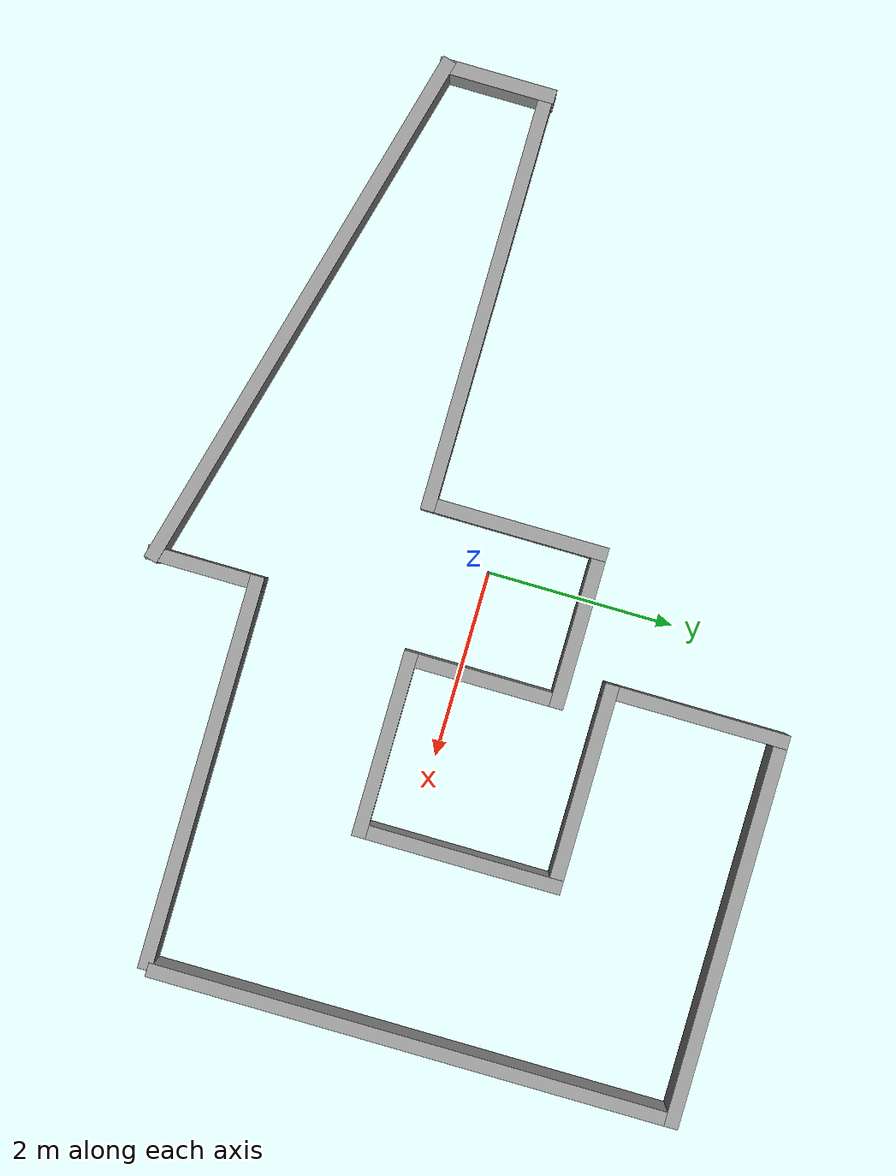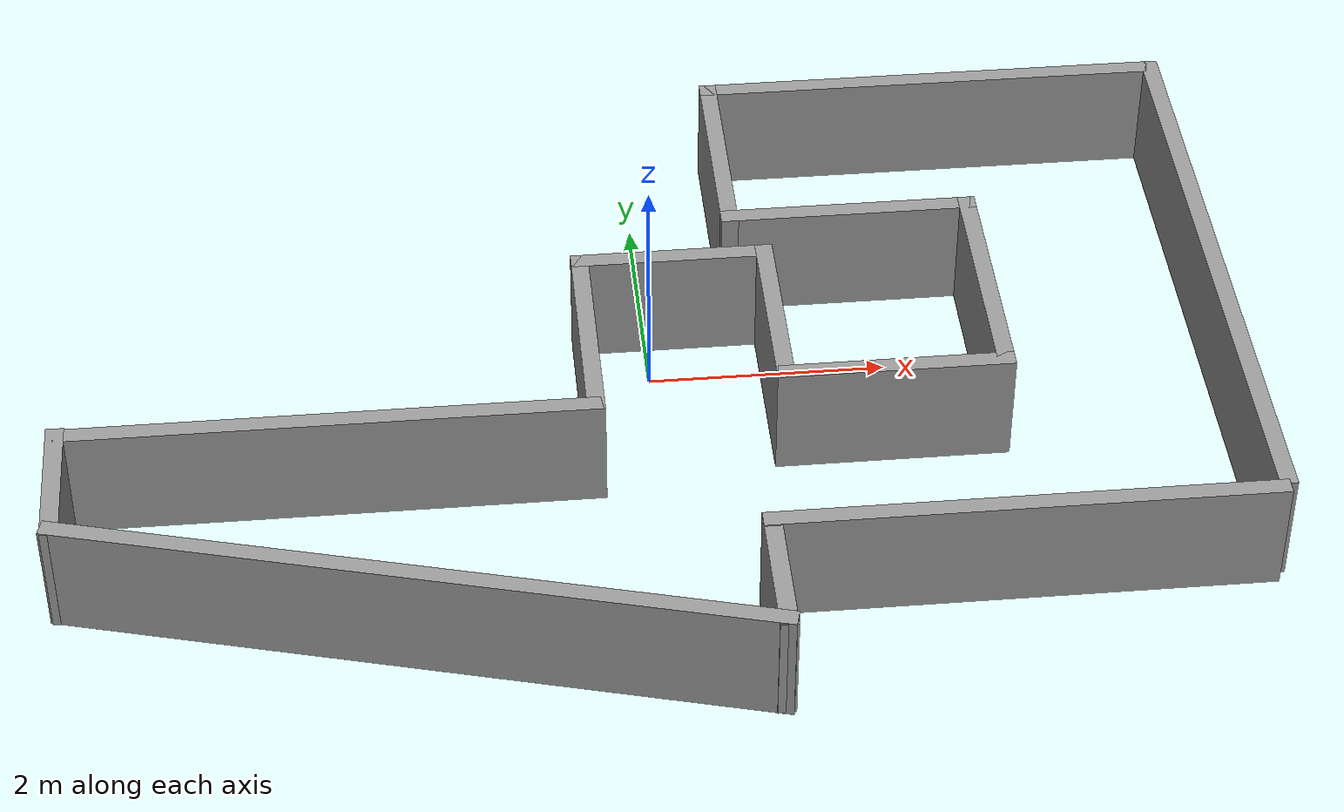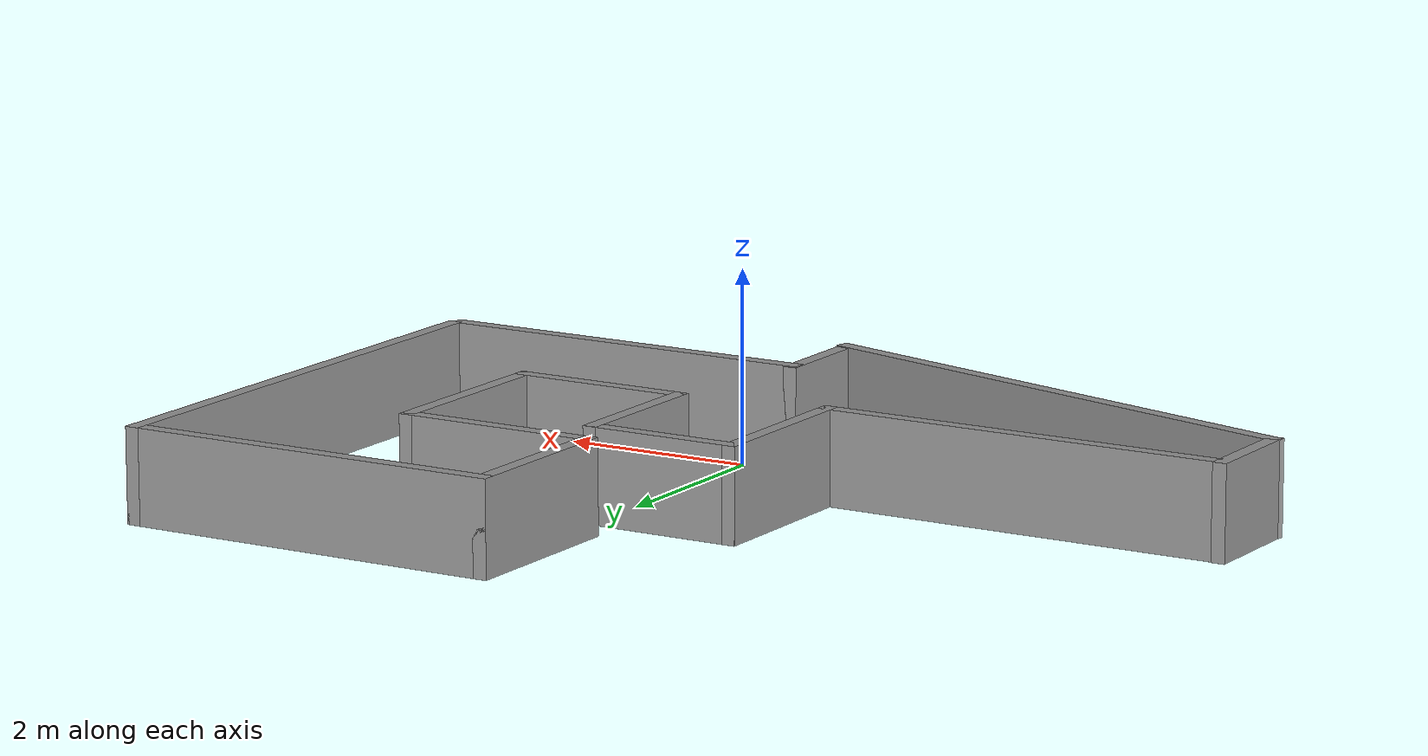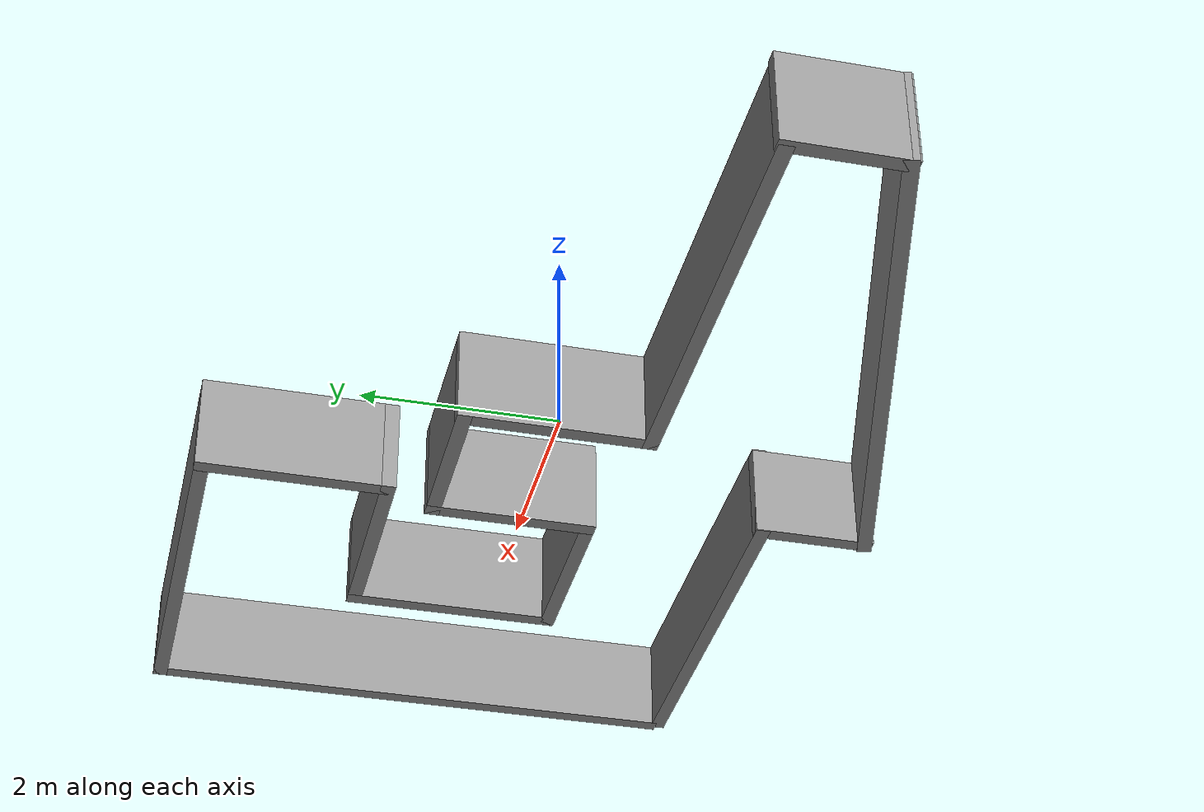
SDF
<?xml version='1.0'?>
<sdf version='1.7'>
  <model name='walls'>
    <link name='Wall_10'>
      <pose>2.01446 -0.541626 0 0 -0 0</pose>
      <self_collide>0</self_collide>
      <enable_wind>0</enable_wind>
      <kinematic>0</kinematic>
      <gravity>1</gravity>
      <inertial>
        <mass>1</mass>
        <pose>0 0 0 0 -0 0</pose>
        <inertia>
          <ixx>1</ixx>
          <ixy>0</ixy>
          <ixz>0</ixz>
          <iyy>1</iyy>
          <iyz>0</iyz>
          <izz>1</izz>
        </inertia>
      </inertial>
      <visual name='Wall_10_Visual'>
        <pose>0 0 0 0 -0 0</pose>
        <geometry>
          <box>
            <size>2 0.15 1</size>
          </box>
        </geometry>
        <material>
          <script>
            <uri>file://media/materials/scripts/gazebo.material</uri>
            <name>Gazebo/Grey</name>
          </script>
          <ambient>1 1 1 1</ambient>
          <shader type='pixel'>
            <normal_map>__default__</normal_map>
          </shader>
          <diffuse>0.7 0.7 0.7 1</diffuse>
          <specular>0.01 0.01 0.01 1</specular>
          <emissive>0 0 0 1</emissive>
        </material>
        <meta>
          <layer>0</layer>
        </meta>
        <transparency>0</transparency>
        <cast_shadows>1</cast_shadows>
      </visual>
      <collision name='Wall_10_Collision'>
        <laser_retro>0</laser_retro>
        <max_contacts>10</max_contacts>
        <pose>0 0 0 0 -0 0</pose>
        <geometry>
          <box>
            <size>2 0.15 1</size>
          </box>
        </geometry>
        <surface>
          <friction>
            <ode>
              <mu>1</mu>
              <mu2>1</mu2>
              <fdir1>0 0 0</fdir1>
              <slip1>0</slip1>
              <slip2>0</slip2>
            </ode>
            <torsional>
              <coefficient>1</coefficient>
              <patch_radius>0</patch_radius>
              <surface_radius>0</surface_radius>
              <use_patch_radius>1</use_patch_radius>
              <ode>
                <slip>0</slip>
              </ode>
            </torsional>
          </friction>
          <bounce>
            <restitution_coefficient>0</restitution_coefficient>
            <threshold>1e+06</threshold>
          </bounce>
          <contact>
            <collide_without_contact>0</collide_without_contact>
            <collide_without_contact_bitmask>1</collide_without_contact_bitmask>
            <collide_bitmask>1</collide_bitmask>
            <ode>
              <soft_cfm>0</soft_cfm>
              <soft_erp>0.2</soft_erp>
              <kp>1e+13</kp>
              <kd>1</kd>
              <max_vel>0.01</max_vel>
              <min_depth>0</min_depth>
            </ode>
            <bullet>
              <split_impulse>1</split_impulse>
              <split_impulse_penetration_threshold>-0.01</split_impulse_penetration_threshold>
              <soft_cfm>0</soft_cfm>
              <soft_erp>0.2</soft_erp>
              <kp>1e+13</kp>
              <kd>1</kd>
            </bullet>
          </contact>
        </surface>
      </collision>
    </link>
    <link name='Wall_14'>
      <pose>2.93946 0.508374 0 0 -0 1.5708</pose>
      <self_collide>0</self_collide>
      <enable_wind>0</enable_wind>
      <kinematic>0</kinematic>
      <gravity>1</gravity>
      <inertial>
        <mass>1</mass>
        <pose>0 0 0 0 -0 0</pose>
        <inertia>
          <ixx>1</ixx>
          <ixy>0</ixy>
          <ixz>0</ixz>
          <iyy>1</iyy>
          <iyz>0</iyz>
          <izz>1</izz>
        </inertia>
      </inertial>
      <visual name='Wall_14_Visual'>
        <pose>0 0 0 0 -0 0</pose>
        <geometry>
          <box>
            <size>2.25 0.15 1</size>
          </box>
        </geometry>
        <material>
          <script>
            <uri>file://media/materials/scripts/gazebo.material</uri>
            <name>Gazebo/Grey</name>
          </script>
          <ambient>1 1 1 1</ambient>
          <shader type='pixel'>
            <normal_map>__default__</normal_map>
          </shader>
          <diffuse>0.7 0.7 0.7 1</diffuse>
          <specular>0.01 0.01 0.01 1</specular>
          <emissive>0 0 0 1</emissive>
        </material>
        <meta>
          <layer>0</layer>
        </meta>
        <transparency>0</transparency>
        <cast_shadows>1</cast_shadows>
      </visual>
      <collision name='Wall_14_Collision'>
        <laser_retro>0</laser_retro>
        <max_contacts>10</max_contacts>
        <pose>0 0 0 0 -0 0</pose>
        <geometry>
          <box>
            <size>2.25 0.15 1</size>
          </box>
        </geometry>
        <surface>
          <friction>
            <ode>
              <mu>1</mu>
              <mu2>1</mu2>
              <fdir1>0 0 0</fdir1>
              <slip1>0</slip1>
              <slip2>0</slip2>
            </ode>
            <torsional>
              <coefficient>1</coefficient>
              <patch_radius>0</patch_radius>
              <surface_radius>0</surface_radius>
              <use_patch_radius>1</use_patch_radius>
              <ode>
                <slip>0</slip>
              </ode>
            </torsional>
          </friction>
          <bounce>
            <restitution_coefficient>0</restitution_coefficient>
            <threshold>1e+06</threshold>
          </bounce>
          <contact>
            <collide_without_contact>0</collide_without_contact>
            <collide_without_contact_bitmask>1</collide_without_contact_bitmask>
            <collide_bitmask>1</collide_bitmask>
            <ode>
              <soft_cfm>0</soft_cfm>
              <soft_erp>0.2</soft_erp>
              <kp>1e+13</kp>
              <kd>1</kd>
              <max_vel>0.01</max_vel>
              <min_depth>0</min_depth>
            </ode>
            <bullet>
              <split_impulse>1</split_impulse>
              <split_impulse_penetration_threshold>-0.01</split_impulse_penetration_threshold>
              <soft_cfm>0</soft_cfm>
              <soft_erp>0.2</soft_erp>
              <kp>1e+13</kp>
              <kd>1</kd>
            </bullet>
          </contact>
        </surface>
      </collision>
    </link>
    <link name='Wall_15'>
      <pose>1.88946 1.55837 0 0 -0 3.14159</pose>
      <self_collide>0</self_collide>
      <enable_wind>0</enable_wind>
      <kinematic>0</kinematic>
      <gravity>1</gravity>
      <inertial>
        <mass>1</mass>
        <pose>0 0 0 0 -0 0</pose>
        <inertia>
          <ixx>1</ixx>
          <ixy>0</ixy>
          <ixz>0</ixz>
          <iyy>1</iyy>
          <iyz>0</iyz>
          <izz>1</izz>
        </inertia>
      </inertial>
      <visual name='Wall_15_Visual'>
        <pose>0 0 0 0 -0 0</pose>
        <geometry>
          <box>
            <size>2.25 0.15 1</size>
          </box>
        </geometry>
        <material>
          <script>
            <uri>file://media/materials/scripts/gazebo.material</uri>
            <name>Gazebo/Grey</name>
          </script>
          <ambient>1 1 1 1</ambient>
          <shader type='pixel'>
            <normal_map>__default__</normal_map>
          </shader>
          <diffuse>0.7 0.7 0.7 1</diffuse>
          <specular>0.01 0.01 0.01 1</specular>
          <emissive>0 0 0 1</emissive>
        </material>
        <meta>
          <layer>0</layer>
        </meta>
        <transparency>0</transparency>
        <cast_shadows>1</cast_shadows>
      </visual>
      <collision name='Wall_15_Collision'>
        <laser_retro>0</laser_retro>
        <max_contacts>10</max_contacts>
        <pose>0 0 0 0 -0 0</pose>
        <geometry>
          <box>
            <size>2.25 0.15 1</size>
          </box>
        </geometry>
        <surface>
          <friction>
            <ode>
              <mu>1</mu>
              <mu2>1</mu2>
              <fdir1>0 0 0</fdir1>
              <slip1>0</slip1>
              <slip2>0</slip2>
            </ode>
            <torsional>
              <coefficient>1</coefficient>
              <patch_radius>0</patch_radius>
              <surface_radius>0</surface_radius>
              <use_patch_radius>1</use_patch_radius>
              <ode>
                <slip>0</slip>
              </ode>
            </torsional>
          </friction>
          <bounce>
            <restitution_coefficient>0</restitution_coefficient>
            <threshold>1e+06</threshold>
          </bounce>
          <contact>
            <collide_without_contact>0</collide_without_contact>
            <collide_without_contact_bitmask>1</collide_without_contact_bitmask>
            <collide_bitmask>1</collide_bitmask>
            <ode>
              <soft_cfm>0</soft_cfm>
              <soft_erp>0.2</soft_erp>
              <kp>1e+13</kp>
              <kd>1</kd>
              <max_vel>0.01</max_vel>
              <min_depth>0</min_depth>
            </ode>
            <bullet>
              <split_impulse>1</split_impulse>
              <split_impulse_penetration_threshold>-0.01</split_impulse_penetration_threshold>
              <soft_cfm>0</soft_cfm>
              <soft_erp>0.2</soft_erp>
              <kp>1e+13</kp>
              <kd>1</kd>
            </bullet>
          </contact>
        </surface>
      </collision>
    </link>
    <link name='Wall_16'>
      <pose>0.839457 2.48337 0 0 -0 1.5708</pose>
      <self_collide>0</self_collide>
      <enable_wind>0</enable_wind>
      <kinematic>0</kinematic>
      <gravity>1</gravity>
      <inertial>
        <mass>1</mass>
        <pose>0 0 0 0 -0 0</pose>
        <inertia>
          <ixx>1</ixx>
          <ixy>0</ixy>
          <ixz>0</ixz>
          <iyy>1</iyy>
          <iyz>0</iyz>
          <izz>1</izz>
        </inertia>
      </inertial>
      <visual name='Wall_16_Visual'>
        <pose>0 0 0 0 -0 0</pose>
        <geometry>
          <box>
            <size>2 0.15 1</size>
          </box>
        </geometry>
        <material>
          <script>
            <uri>file://media/materials/scripts/gazebo.material</uri>
            <name>Gazebo/Grey</name>
          </script>
          <ambient>1 1 1 1</ambient>
          <shader type='pixel'>
            <normal_map>__default__</normal_map>
          </shader>
          <diffuse>0.7 0.7 0.7 1</diffuse>
          <specular>0.01 0.01 0.01 1</specular>
          <emissive>0 0 0 1</emissive>
        </material>
        <meta>
          <layer>0</layer>
        </meta>
        <transparency>0</transparency>
        <cast_shadows>1</cast_shadows>
      </visual>
      <collision name='Wall_16_Collision'>
        <laser_retro>0</laser_retro>
        <max_contacts>10</max_contacts>
        <pose>0 0 0 0 -0 0</pose>
        <geometry>
          <box>
            <size>2 0.15 1</size>
          </box>
        </geometry>
        <surface>
          <friction>
            <ode>
              <mu>1</mu>
              <mu2>1</mu2>
              <fdir1>0 0 0</fdir1>
              <slip1>0</slip1>
              <slip2>0</slip2>
            </ode>
            <torsional>
              <coefficient>1</coefficient>
              <patch_radius>0</patch_radius>
              <surface_radius>0</surface_radius>
              <use_patch_radius>1</use_patch_radius>
              <ode>
                <slip>0</slip>
              </ode>
            </torsional>
          </friction>
          <bounce>
            <restitution_coefficient>0</restitution_coefficient>
            <threshold>1e+06</threshold>
          </bounce>
          <contact>
            <collide_without_contact>0</collide_without_contact>
            <collide_without_contact_bitmask>1</collide_without_contact_bitmask>
            <collide_bitmask>1</collide_bitmask>
            <ode>
              <soft_cfm>0</soft_cfm>
              <soft_erp>0.2</soft_erp>
              <kp>1e+13</kp>
              <kd>1</kd>
              <max_vel>0.01</max_vel>
              <min_depth>0</min_depth>
            </ode>
            <bullet>
              <split_impulse>1</split_impulse>
              <split_impulse_penetration_threshold>-0.01</split_impulse_penetration_threshold>
              <soft_cfm>0</soft_cfm>
              <soft_erp>0.2</soft_erp>
              <kp>1e+13</kp>
              <kd>1</kd>
            </bullet>
          </contact>
        </surface>
      </collision>
    </link>
    <link name='Wall_17'>
      <pose>2.88946 3.40837 0 0 -0 0</pose>
      <self_collide>0</self_collide>
      <enable_wind>0</enable_wind>
      <kinematic>0</kinematic>
      <gravity>1</gravity>
      <inertial>
        <mass>1</mass>
        <pose>0 0 0 0 -0 0</pose>
        <inertia>
          <ixx>1</ixx>
          <ixy>0</ixy>
          <ixz>0</ixz>
          <iyy>1</iyy>
          <iyz>0</iyz>
          <izz>1</izz>
        </inertia>
      </inertial>
      <visual name='Wall_17_Visual'>
        <pose>0 0 0 0 -0 0</pose>
        <geometry>
          <box>
            <size>4.25 0.15 1</size>
          </box>
        </geometry>
        <material>
          <script>
            <uri>file://media/materials/scripts/gazebo.material</uri>
            <name>Gazebo/Grey</name>
          </script>
          <ambient>1 1 1 1</ambient>
          <shader type='pixel'>
            <normal_map>__default__</normal_map>
          </shader>
          <diffuse>0.7 0.7 0.7 1</diffuse>
          <specular>0.01 0.01 0.01 1</specular>
          <emissive>0 0 0 1</emissive>
        </material>
        <meta>
          <layer>0</layer>
        </meta>
        <transparency>0</transparency>
        <cast_shadows>1</cast_shadows>
      </visual>
      <collision name='Wall_17_Collision'>
        <laser_retro>0</laser_retro>
        <max_contacts>10</max_contacts>
        <pose>0 0 0 0 -0 0</pose>
        <geometry>
          <box>
            <size>4.25 0.15 1</size>
          </box>
        </geometry>
        <surface>
          <friction>
            <ode>
              <mu>1</mu>
              <mu2>1</mu2>
              <fdir1>0 0 0</fdir1>
              <slip1>0</slip1>
              <slip2>0</slip2>
            </ode>
            <torsional>
              <coefficient>1</coefficient>
              <patch_radius>0</patch_radius>
              <surface_radius>0</surface_radius>
              <use_patch_radius>1</use_patch_radius>
              <ode>
                <slip>0</slip>
              </ode>
            </torsional>
          </friction>
          <bounce>
            <restitution_coefficient>0</restitution_coefficient>
            <threshold>1e+06</threshold>
          </bounce>
          <contact>
            <collide_without_contact>0</collide_without_contact>
            <collide_without_contact_bitmask>1</collide_without_contact_bitmask>
            <collide_bitmask>1</collide_bitmask>
            <ode>
              <soft_cfm>0</soft_cfm>
              <soft_erp>0.2</soft_erp>
              <kp>1e+13</kp>
              <kd>1</kd>
              <max_vel>0.01</max_vel>
              <min_depth>0</min_depth>
            </ode>
            <bullet>
              <split_impulse>1</split_impulse>
              <split_impulse_penetration_threshold>-0.01</split_impulse_penetration_threshold>
              <soft_cfm>0</soft_cfm>
              <soft_erp>0.2</soft_erp>
              <kp>1e+13</kp>
              <kd>1</kd>
            </bullet>
          </contact>
        </surface>
      </collision>
    </link>
    <link name='Wall_19'>
      <pose>4.93946 0.608374 0 0 0 -1.5708</pose>
      <self_collide>0</self_collide>
      <enable_wind>0</enable_wind>
      <kinematic>0</kinematic>
      <gravity>1</gravity>
      <inertial>
        <mass>1</mass>
        <pose>0 0 0 0 -0 0</pose>
        <inertia>
          <ixx>1</ixx>
          <ixy>0</ixy>
          <ixz>0</ixz>
          <iyy>1</iyy>
          <iyz>0</iyz>
          <izz>1</izz>
        </inertia>
      </inertial>
      <visual name='Wall_19_Visual'>
        <pose>0 0 0 0 -0 0</pose>
        <geometry>
          <box>
            <size>5.75 0.15 1</size>
          </box>
        </geometry>
        <material>
          <script>
            <uri>file://media/materials/scripts/gazebo.material</uri>
            <name>Gazebo/Grey</name>
          </script>
          <ambient>1 1 1 1</ambient>
          <shader type='pixel'>
            <normal_map>__default__</normal_map>
          </shader>
          <diffuse>0.7 0.7 0.7 1</diffuse>
          <specular>0.01 0.01 0.01 1</specular>
          <emissive>0 0 0 1</emissive>
        </material>
        <meta>
          <layer>0</layer>
        </meta>
        <transparency>0</transparency>
        <cast_shadows>1</cast_shadows>
      </visual>
      <collision name='Wall_19_Collision'>
        <laser_retro>0</laser_retro>
        <max_contacts>10</max_contacts>
        <pose>0 0 0 0 -0 0</pose>
        <geometry>
          <box>
            <size>5.75 0.15 1</size>
          </box>
        </geometry>
        <surface>
          <friction>
            <ode>
              <mu>1</mu>
              <mu2>1</mu2>
              <fdir1>0 0 0</fdir1>
              <slip1>0</slip1>
              <slip2>0</slip2>
            </ode>
            <torsional>
              <coefficient>1</coefficient>
              <patch_radius>0</patch_radius>
              <surface_radius>0</surface_radius>
              <use_patch_radius>1</use_patch_radius>
              <ode>
                <slip>0</slip>
              </ode>
            </torsional>
          </friction>
          <bounce>
            <restitution_coefficient>0</restitution_coefficient>
            <threshold>1e+06</threshold>
          </bounce>
          <contact>
            <collide_without_contact>0</collide_without_contact>
            <collide_without_contact_bitmask>1</collide_without_contact_bitmask>
            <collide_bitmask>1</collide_bitmask>
            <ode>
              <soft_cfm>0</soft_cfm>
              <soft_erp>0.2</soft_erp>
              <kp>1e+13</kp>
              <kd>1</kd>
              <max_vel>0.01</max_vel>
              <min_depth>0</min_depth>
            </ode>
            <bullet>
              <split_impulse>1</split_impulse>
              <split_impulse_penetration_threshold>-0.01</split_impulse_penetration_threshold>
              <soft_cfm>0</soft_cfm>
              <soft_erp>0.2</soft_erp>
              <kp>1e+13</kp>
              <kd>1</kd>
            </bullet>
          </contact>
        </surface>
      </collision>
    </link>
    <link name='Wall_2'>
      <pose>-2.07414 -2.63458 0 0 0 -0.259759</pose>
      <self_collide>0</self_collide>
      <enable_wind>0</enable_wind>
      <kinematic>0</kinematic>
      <gravity>1</gravity>
      <inertial>
        <mass>1</mass>
        <pose>0 0 0 0 -0 0</pose>
        <inertia>
          <ixx>1</ixx>
          <ixy>0</ixy>
          <ixz>0</ixz>
          <iyy>1</iyy>
          <iyz>0</iyz>
          <izz>1</izz>
        </inertia>
      </inertial>
      <visual name='Wall_2_Visual'>
        <pose>0 0 0 0 -0 0</pose>
        <geometry>
          <box>
            <size>6.04491 0.15 1</size>
          </box>
        </geometry>
        <material>
          <script>
            <uri>file://media/materials/scripts/gazebo.material</uri>
            <name>Gazebo/Grey</name>
          </script>
          <ambient>1 1 1 1</ambient>
          <shader type='pixel'>
            <normal_map>__default__</normal_map>
          </shader>
          <diffuse>0.7 0.7 0.7 1</diffuse>
          <specular>0.01 0.01 0.01 1</specular>
          <emissive>0 0 0 1</emissive>
        </material>
        <meta>
          <layer>0</layer>
        </meta>
        <transparency>0</transparency>
        <cast_shadows>1</cast_shadows>
      </visual>
      <collision name='Wall_2_Collision'>
        <laser_retro>0</laser_retro>
        <max_contacts>10</max_contacts>
        <pose>0 0 0 0 -0 0</pose>
        <geometry>
          <box>
            <size>6.04491 0.15 1</size>
          </box>
        </geometry>
        <surface>
          <friction>
            <ode>
              <mu>1</mu>
              <mu2>1</mu2>
              <fdir1>0 0 0</fdir1>
              <slip1>0</slip1>
              <slip2>0</slip2>
            </ode>
            <torsional>
              <coefficient>1</coefficient>
              <patch_radius>0</patch_radius>
              <surface_radius>0</surface_radius>
              <use_patch_radius>1</use_patch_radius>
              <ode>
                <slip>0</slip>
              </ode>
            </torsional>
          </friction>
          <bounce>
            <restitution_coefficient>0</restitution_coefficient>
            <threshold>1e+06</threshold>
          </bounce>
          <contact>
            <collide_without_contact>0</collide_without_contact>
            <collide_without_contact_bitmask>1</collide_without_contact_bitmask>
            <collide_bitmask>1</collide_bitmask>
            <ode>
              <soft_cfm>0</soft_cfm>
              <soft_erp>0.2</soft_erp>
              <kp>1e+13</kp>
              <kd>1</kd>
              <max_vel>0.01</max_vel>
              <min_depth>0</min_depth>
            </ode>
            <bullet>
              <split_impulse>1</split_impulse>
              <split_impulse_penetration_threshold>-0.01</split_impulse_penetration_threshold>
              <soft_cfm>0</soft_cfm>
              <soft_erp>0.2</soft_erp>
              <kp>1e+13</kp>
              <kd>1</kd>
            </bullet>
          </contact>
        </surface>
      </collision>
    </link>
    <link name='Wall_21'>
      <pose>0.774437 -2.84163 0 0 -0 1.5708</pose>
      <self_collide>0</self_collide>
      <enable_wind>0</enable_wind>
      <kinematic>0</kinematic>
      <gravity>1</gravity>
      <inertial>
        <mass>1</mass>
        <pose>0 0 0 0 -0 0</pose>
        <inertia>
          <ixx>1</ixx>
          <ixy>0</ixy>
          <ixz>0</ixz>
          <iyy>1</iyy>
          <iyz>0</iyz>
          <izz>1</izz>
        </inertia>
      </inertial>
      <visual name='Wall_21_Visual'>
        <pose>0 0 0 0 -0 0</pose>
        <geometry>
          <box>
            <size>1.25 0.15 0.98</size>
          </box>
        </geometry>
        <material>
          <script>
            <uri>file://media/materials/scripts/gazebo.material</uri>
            <name>Gazebo/Grey</name>
          </script>
          <ambient>1 1 1 1</ambient>
          <shader type='pixel'>
            <normal_map>__default__</normal_map>
          </shader>
          <diffuse>0.7 0.7 0.7 1</diffuse>
          <specular>0.01 0.01 0.01 1</specular>
          <emissive>0 0 0 1</emissive>
        </material>
        <meta>
          <layer>0</layer>
        </meta>
        <transparency>0</transparency>
        <cast_shadows>1</cast_shadows>
      </visual>
      <collision name='Wall_21_Collision'>
        <laser_retro>0</laser_retro>
        <max_contacts>10</max_contacts>
        <pose>0 0 0 0 -0 0</pose>
        <geometry>
          <box>
            <size>1.25 0.15 1</size>
          </box>
        </geometry>
        <surface>
          <friction>
            <ode>
              <mu>1</mu>
              <mu2>1</mu2>
              <fdir1>0 0 0</fdir1>
              <slip1>0</slip1>
              <slip2>0</slip2>
            </ode>
            <torsional>
              <coefficient>1</coefficient>
              <patch_radius>0</patch_radius>
              <surface_radius>0</surface_radius>
              <use_patch_radius>1</use_patch_radius>
              <ode>
                <slip>0</slip>
              </ode>
            </torsional>
          </friction>
          <bounce>
            <restitution_coefficient>0</restitution_coefficient>
            <threshold>1e+06</threshold>
          </bounce>
          <contact>
            <collide_without_contact>0</collide_without_contact>
            <collide_without_contact_bitmask>1</collide_without_contact_bitmask>
            <collide_bitmask>1</collide_bitmask>
            <ode>
              <soft_cfm>0</soft_cfm>
              <soft_erp>0.2</soft_erp>
              <kp>1e+13</kp>
              <kd>1</kd>
              <max_vel>0.01</max_vel>
              <min_depth>0</min_depth>
            </ode>
            <bullet>
              <split_impulse>1</split_impulse>
              <split_impulse_penetration_threshold>-0.01</split_impulse_penetration_threshold>
              <soft_cfm>0</soft_cfm>
              <soft_erp>0.2</soft_erp>
              <kp>1e+13</kp>
              <kd>1</kd>
            </bullet>
          </contact>
        </surface>
      </collision>
    </link>
    <link name='Wall_22'>
      <pose>2.82444 -2.29163 0 0 -0 0</pose>
      <self_collide>0</self_collide>
      <enable_wind>0</enable_wind>
      <kinematic>0</kinematic>
      <gravity>1</gravity>
      <inertial>
        <mass>1</mass>
        <pose>0 0 0 0 -0 0</pose>
        <inertia>
          <ixx>1</ixx>
          <ixy>0</ixy>
          <ixz>0</ixz>
          <iyy>1</iyy>
          <iyz>0</iyz>
          <izz>1</izz>
        </inertia>
      </inertial>
      <visual name='Wall_22_Visual'>
        <pose>0 0 0 0 -0 0</pose>
        <geometry>
          <box>
            <size>4.25 0.15 1</size>
          </box>
        </geometry>
        <material>
          <script>
            <uri>file://media/materials/scripts/gazebo.material</uri>
            <name>Gazebo/Grey</name>
          </script>
          <ambient>1 1 1 1</ambient>
          <shader type='pixel'>
            <normal_map>__default__</normal_map>
          </shader>
          <diffuse>0.7 0.7 0.7 1</diffuse>
          <specular>0.01 0.01 0.01 1</specular>
          <emissive>0 0 0 1</emissive>
        </material>
        <meta>
          <layer>0</layer>
        </meta>
        <transparency>0</transparency>
        <cast_shadows>1</cast_shadows>
      </visual>
      <collision name='Wall_22_Collision'>
        <laser_retro>0</laser_retro>
        <max_contacts>10</max_contacts>
        <pose>0 0 0 0 -0 0</pose>
        <geometry>
          <box>
            <size>4.25 0.15 1</size>
          </box>
        </geometry>
        <surface>
          <friction>
            <ode>
              <mu>1</mu>
              <mu2>1</mu2>
              <fdir1>0 0 0</fdir1>
              <slip1>0</slip1>
              <slip2>0</slip2>
            </ode>
            <torsional>
              <coefficient>1</coefficient>
              <patch_radius>0</patch_radius>
              <surface_radius>0</surface_radius>
              <use_patch_radius>1</use_patch_radius>
              <ode>
                <slip>0</slip>
              </ode>
            </torsional>
          </friction>
          <bounce>
            <restitution_coefficient>0</restitution_coefficient>
            <threshold>1e+06</threshold>
          </bounce>
          <contact>
            <collide_without_contact>0</collide_without_contact>
            <collide_without_contact_bitmask>1</collide_without_contact_bitmask>
            <collide_bitmask>1</collide_bitmask>
            <ode>
              <soft_cfm>0</soft_cfm>
              <soft_erp>0.2</soft_erp>
              <kp>1e+13</kp>
              <kd>1</kd>
              <max_vel>0.01</max_vel>
              <min_depth>0</min_depth>
            </ode>
            <bullet>
              <split_impulse>1</split_impulse>
              <split_impulse_penetration_threshold>-0.01</split_impulse_penetration_threshold>
              <soft_cfm>0</soft_cfm>
              <soft_erp>0.2</soft_erp>
              <kp>1e+13</kp>
              <kd>1</kd>
            </bullet>
          </contact>
        </surface>
      </collision>
    </link>
    <link name='Wall_24'>
      <pose>-4.92271 -1.32753 0 0 -0 1.5708</pose>
      <self_collide>0</self_collide>
      <enable_wind>0</enable_wind>
      <kinematic>0</kinematic>
      <inertial>
        <inertia>
          <ixx>0</ixx>
          <ixy>0</ixy>
          <ixz>0</ixz>
          <iyy>0</iyy>
          <iyz>0</iyz>
          <izz>0</izz>
        </inertia>
        <mass>0</mass>
        <pose>0 0 0 0 -0 0</pose>
      </inertial>
      <gravity>1</gravity>
      <visual name='Wall_24_Visual'>
        <pose>0 0 0 0 -0 0</pose>
        <geometry>
          <box>
            <size>1.25 0.15 1</size>
          </box>
        </geometry>
        <material>
          <script>
            <uri>file://media/materials/scripts/gazebo.material</uri>
            <name>Gazebo/Grey</name>
          </script>
          <ambient>1 1 1 1</ambient>
          <shader type='pixel'>
            <normal_map>__default__</normal_map>
          </shader>
          <diffuse>0.7 0.7 0.7 1</diffuse>
          <specular>0.01 0.01 0.01 1</specular>
          <emissive>0 0 0 1</emissive>
        </material>
        <meta>
          <layer>0</layer>
        </meta>
        <transparency>0</transparency>
        <cast_shadows>1</cast_shadows>
      </visual>
      <collision name='Wall_24_Collision'>
        <laser_retro>0</laser_retro>
        <max_contacts>10</max_contacts>
        <pose>0 0 0 0 -0 0</pose>
        <geometry>
          <box>
            <size>1.25 0.15 1</size>
          </box>
        </geometry>
        <surface>
          <friction>
            <ode>
              <mu>1</mu>
              <mu2>1</mu2>
              <fdir1>0 0 0</fdir1>
              <slip1>0</slip1>
              <slip2>0</slip2>
            </ode>
            <torsional>
              <coefficient>1</coefficient>
              <patch_radius>0</patch_radius>
              <surface_radius>0</surface_radius>
              <use_patch_radius>1</use_patch_radius>
              <ode>
                <slip>0</slip>
              </ode>
            </torsional>
          </friction>
          <bounce>
            <restitution_coefficient>0</restitution_coefficient>
            <threshold>1e+06</threshold>
          </bounce>
          <contact>
            <collide_without_contact>0</collide_without_contact>
            <collide_without_contact_bitmask>1</collide_without_contact_bitmask>
            <collide_bitmask>1</collide_bitmask>
            <ode>
              <soft_cfm>0</soft_cfm>
              <soft_erp>0.2</soft_erp>
              <kp>1e+13</kp>
              <kd>1</kd>
              <max_vel>0.01</max_vel>
              <min_depth>0</min_depth>
            </ode>
            <bullet>
              <split_impulse>1</split_impulse>
              <split_impulse_penetration_threshold>-0.01</split_impulse_penetration_threshold>
              <soft_cfm>0</soft_cfm>
              <soft_erp>0.2</soft_erp>
              <kp>1e+13</kp>
              <kd>1</kd>
            </bullet>
          </contact>
        </surface>
      </collision>
    </link>
    <link name='Wall_5'>
      <pose>-2.68554 -0.791626 0 0 -0 0</pose>
      <self_collide>0</self_collide>
      <enable_wind>0</enable_wind>
      <kinematic>0</kinematic>
      <gravity>1</gravity>
      <inertial>
        <mass>1</mass>
        <pose>0 0 0 0 -0 0</pose>
        <inertia>
          <ixx>1</ixx>
          <ixy>0</ixy>
          <ixz>0</ixz>
          <iyy>1</iyy>
          <iyz>0</iyz>
          <izz>1</izz>
        </inertia>
      </inertial>
      <visual name='Wall_5_Visual'>
        <pose>0 0 0 0 -0 0</pose>
        <geometry>
          <box>
            <size>4.5 0.15 1</size>
          </box>
        </geometry>
        <material>
          <script>
            <uri>file://media/materials/scripts/gazebo.material</uri>
            <name>Gazebo/Grey</name>
          </script>
          <ambient>1 1 1 1</ambient>
          <shader type='pixel'>
            <normal_map>__default__</normal_map>
          </shader>
          <diffuse>0.7 0.7 0.7 1</diffuse>
          <specular>0.01 0.01 0.01 1</specular>
          <emissive>0 0 0 1</emissive>
        </material>
        <meta>
          <layer>0</layer>
        </meta>
        <transparency>0</transparency>
        <cast_shadows>1</cast_shadows>
      </visual>
      <collision name='Wall_5_Collision'>
        <laser_retro>0</laser_retro>
        <max_contacts>10</max_contacts>
        <pose>0 0 0 0 -0 0</pose>
        <geometry>
          <box>
            <size>4.5 0.15 1</size>
          </box>
        </geometry>
        <surface>
          <friction>
            <ode>
              <mu>1</mu>
              <mu2>1</mu2>
              <fdir1>0 0 0</fdir1>
              <slip1>0</slip1>
              <slip2>0</slip2>
            </ode>
            <torsional>
              <coefficient>1</coefficient>
              <patch_radius>0</patch_radius>
              <surface_radius>0</surface_radius>
              <use_patch_radius>1</use_patch_radius>
              <ode>
                <slip>0</slip>
              </ode>
            </torsional>
          </friction>
          <bounce>
            <restitution_coefficient>0</restitution_coefficient>
            <threshold>1e+06</threshold>
          </bounce>
          <contact>
            <collide_without_contact>0</collide_without_contact>
            <collide_without_contact_bitmask>1</collide_without_contact_bitmask>
            <collide_bitmask>1</collide_bitmask>
            <ode>
              <soft_cfm>0</soft_cfm>
              <soft_erp>0.2</soft_erp>
              <kp>1e+13</kp>
              <kd>1</kd>
              <max_vel>0.01</max_vel>
              <min_depth>0</min_depth>
            </ode>
            <bullet>
              <split_impulse>1</split_impulse>
              <split_impulse_penetration_threshold>-0.01</split_impulse_penetration_threshold>
              <soft_cfm>0</soft_cfm>
              <soft_erp>0.2</soft_erp>
              <kp>1e+13</kp>
              <kd>1</kd>
            </bullet>
          </contact>
        </surface>
      </collision>
    </link>
    <link name='Wall_7'>
      <pose>-0.510543 0.133374 0 0 -0 1.5708</pose>
      <self_collide>0</self_collide>
      <enable_wind>0</enable_wind>
      <kinematic>0</kinematic>
      <gravity>1</gravity>
      <inertial>
        <mass>1</mass>
        <pose>0 0 0 0 -0 0</pose>
        <inertia>
          <ixx>1</ixx>
          <ixy>0</ixy>
          <ixz>0</ixz>
          <iyy>1</iyy>
          <iyz>0</iyz>
          <izz>1</izz>
        </inertia>
      </inertial>
      <visual name='Wall_7_Visual'>
        <pose>0 0 0 0 -0 0</pose>
        <geometry>
          <box>
            <size>2 0.15 1</size>
          </box>
        </geometry>
        <material>
          <script>
            <uri>file://media/materials/scripts/gazebo.material</uri>
            <name>Gazebo/Grey</name>
          </script>
          <ambient>1 1 1 1</ambient>
          <shader type='pixel'>
            <normal_map>__default__</normal_map>
          </shader>
          <diffuse>0.7 0.7 0.7 1</diffuse>
          <specular>0.01 0.01 0.01 1</specular>
          <emissive>0 0 0 1</emissive>
        </material>
        <meta>
          <layer>0</layer>
        </meta>
        <transparency>0</transparency>
        <cast_shadows>1</cast_shadows>
      </visual>
      <collision name='Wall_7_Collision'>
        <laser_retro>0</laser_retro>
        <max_contacts>10</max_contacts>
        <pose>0 0 0 0 -0 0</pose>
        <geometry>
          <box>
            <size>2 0.15 1</size>
          </box>
        </geometry>
        <surface>
          <friction>
            <ode>
              <mu>1</mu>
              <mu2>1</mu2>
              <fdir1>0 0 0</fdir1>
              <slip1>0</slip1>
              <slip2>0</slip2>
            </ode>
            <torsional>
              <coefficient>1</coefficient>
              <patch_radius>0</patch_radius>
              <surface_radius>0</surface_radius>
              <use_patch_radius>1</use_patch_radius>
              <ode>
                <slip>0</slip>
              </ode>
            </torsional>
          </friction>
          <bounce>
            <restitution_coefficient>0</restitution_coefficient>
            <threshold>1e+06</threshold>
          </bounce>
          <contact>
            <collide_without_contact>0</collide_without_contact>
            <collide_without_contact_bitmask>1</collide_without_contact_bitmask>
            <collide_bitmask>1</collide_bitmask>
            <ode>
              <soft_cfm>0</soft_cfm>
              <soft_erp>0.2</soft_erp>
              <kp>1e+13</kp>
              <kd>1</kd>
              <max_vel>0.01</max_vel>
              <min_depth>0</min_depth>
            </ode>
            <bullet>
              <split_impulse>1</split_impulse>
              <split_impulse_penetration_threshold>-0.01</split_impulse_penetration_threshold>
              <soft_cfm>0</soft_cfm>
              <soft_erp>0.2</soft_erp>
              <kp>1e+13</kp>
              <kd>1</kd>
            </bullet>
          </contact>
        </surface>
      </collision>
    </link>
    <link name='Wall_8'>
      <pose>0.289457 1.05837 0 0 -0 0</pose>
      <self_collide>0</self_collide>
      <enable_wind>0</enable_wind>
      <kinematic>0</kinematic>
      <gravity>1</gravity>
      <inertial>
        <mass>1</mass>
        <pose>0 0 0 0 -0 0</pose>
        <inertia>
          <ixx>1</ixx>
          <ixy>0</ixy>
          <ixz>0</ixz>
          <iyy>1</iyy>
          <iyz>0</iyz>
          <izz>1</izz>
        </inertia>
      </inertial>
      <visual name='Wall_8_Visual'>
        <pose>0 0 0 0 -0 0</pose>
        <geometry>
          <box>
            <size>1.75 0.15 1</size>
          </box>
        </geometry>
        <material>
          <script>
            <uri>file://media/materials/scripts/gazebo.material</uri>
            <name>Gazebo/Grey</name>
          </script>
          <ambient>1 1 1 1</ambient>
          <shader type='pixel'>
            <normal_map>__default__</normal_map>
          </shader>
          <diffuse>0.7 0.7 0.7 1</diffuse>
          <specular>0.01 0.01 0.01 1</specular>
          <emissive>0 0 0 1</emissive>
        </material>
        <meta>
          <layer>0</layer>
        </meta>
        <transparency>0</transparency>
        <cast_shadows>1</cast_shadows>
      </visual>
      <collision name='Wall_8_Collision'>
        <laser_retro>0</laser_retro>
        <max_contacts>10</max_contacts>
        <pose>0 0 0 0 -0 0</pose>
        <geometry>
          <box>
            <size>1.75 0.15 1</size>
          </box>
        </geometry>
        <surface>
          <friction>
            <ode>
              <mu>1</mu>
              <mu2>1</mu2>
              <fdir1>0 0 0</fdir1>
              <slip1>0</slip1>
              <slip2>0</slip2>
            </ode>
            <torsional>
              <coefficient>1</coefficient>
              <patch_radius>0</patch_radius>
              <surface_radius>0</surface_radius>
              <use_patch_radius>1</use_patch_radius>
              <ode>
                <slip>0</slip>
              </ode>
            </torsional>
          </friction>
          <bounce>
            <restitution_coefficient>0</restitution_coefficient>
            <threshold>1e+06</threshold>
          </bounce>
          <contact>
            <collide_without_contact>0</collide_without_contact>
            <collide_without_contact_bitmask>1</collide_without_contact_bitmask>
            <collide_bitmask>1</collide_bitmask>
            <ode>
              <soft_cfm>0</soft_cfm>
              <soft_erp>0.2</soft_erp>
              <kp>1e+13</kp>
              <kd>1</kd>
              <max_vel>0.01</max_vel>
              <min_depth>0</min_depth>
            </ode>
            <bullet>
              <split_impulse>1</split_impulse>
              <split_impulse_penetration_threshold>-0.01</split_impulse_penetration_threshold>
              <soft_cfm>0</soft_cfm>
              <soft_erp>0.2</soft_erp>
              <kp>1e+13</kp>
              <kd>1</kd>
            </bullet>
          </contact>
        </surface>
      </collision>
    </link>
    <link name='Wall_9'>
      <pose>1.08946 0.258374 0 0 0 -1.5708</pose>
      <self_collide>0</self_collide>
      <enable_wind>0</enable_wind>
      <kinematic>0</kinematic>
      <gravity>1</gravity>
      <inertial>
        <mass>1</mass>
        <pose>0 0 0 0 -0 0</pose>
        <inertia>
          <ixx>1</ixx>
          <ixy>0</ixy>
          <ixz>0</ixz>
          <iyy>1</iyy>
          <iyz>0</iyz>
          <izz>1</izz>
        </inertia>
      </inertial>
      <visual name='Wall_9_Visual'>
        <pose>0 0 0 0 -0 0</pose>
        <geometry>
          <box>
            <size>1.75 0.15 1</size>
          </box>
        </geometry>
        <material>
          <script>
            <uri>file://media/materials/scripts/gazebo.material</uri>
            <name>Gazebo/Grey</name>
          </script>
          <ambient>1 1 1 1</ambient>
          <shader type='pixel'>
            <normal_map>__default__</normal_map>
          </shader>
          <diffuse>0.7 0.7 0.7 1</diffuse>
          <specular>0.01 0.01 0.01 1</specular>
          <emissive>0 0 0 1</emissive>
        </material>
        <meta>
          <layer>0</layer>
        </meta>
        <transparency>0</transparency>
        <cast_shadows>1</cast_shadows>
      </visual>
      <collision name='Wall_9_Collision'>
        <laser_retro>0</laser_retro>
        <max_contacts>10</max_contacts>
        <pose>0 0 0 0 -0 0</pose>
        <geometry>
          <box>
            <size>1.75 0.15 1</size>
          </box>
        </geometry>
        <surface>
          <friction>
            <ode>
              <mu>1</mu>
              <mu2>1</mu2>
              <fdir1>0 0 0</fdir1>
              <slip1>0</slip1>
              <slip2>0</slip2>
            </ode>
            <torsional>
              <coefficient>1</coefficient>
              <patch_radius>0</patch_radius>
              <surface_radius>0</surface_radius>
              <use_patch_radius>1</use_patch_radius>
              <ode>
                <slip>0</slip>
              </ode>
            </torsional>
          </friction>
          <bounce>
            <restitution_coefficient>0</restitution_coefficient>
            <threshold>1e+06</threshold>
          </bounce>
          <contact>
            <collide_without_contact>0</collide_without_contact>
            <collide_without_contact_bitmask>1</collide_without_contact_bitmask>
            <collide_bitmask>1</collide_bitmask>
            <ode>
              <soft_cfm>0</soft_cfm>
              <soft_erp>0.2</soft_erp>
              <kp>1e+13</kp>
              <kd>1</kd>
              <max_vel>0.01</max_vel>
              <min_depth>0</min_depth>
            </ode>
            <bullet>
              <split_impulse>1</split_impulse>
              <split_impulse_penetration_threshold>-0.01</split_impulse_penetration_threshold>
              <soft_cfm>0</soft_cfm>
              <soft_erp>0.2</soft_erp>
              <kp>1e+13</kp>
              <kd>1</kd>
            </bullet>
          </contact>
        </surface>
      </collision>
    </link>
    <static>1</static>
    <allow_auto_disable>1</allow_auto_disable>
  </model>
</sdf>
